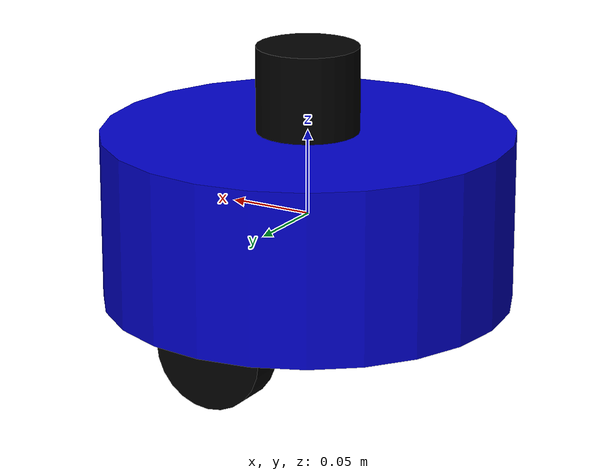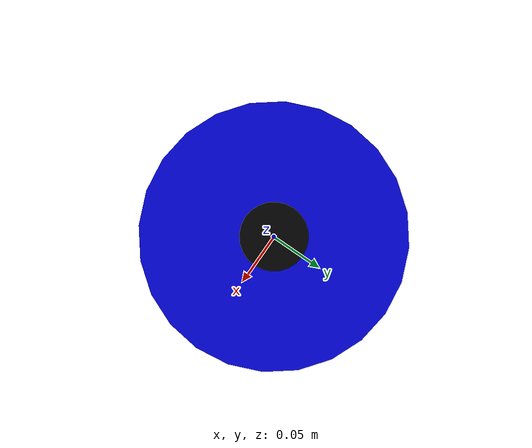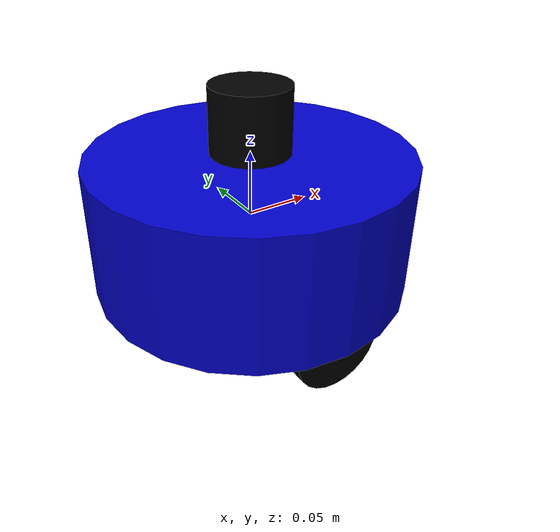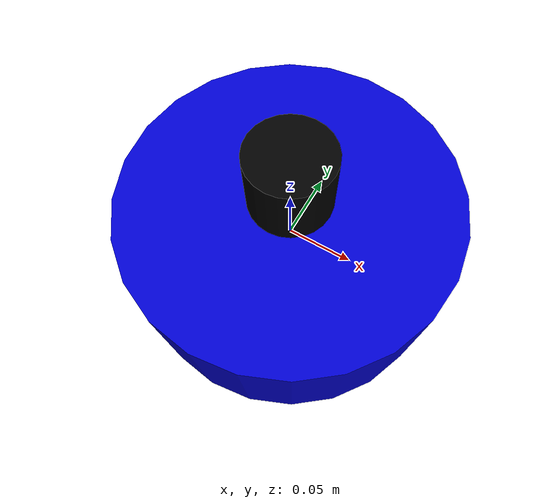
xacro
<?xml version="1.0"?>
<robot name="formicabot" xmlns:xacro="http://www.ros.org/wiki/xacro">

  <!-- Constants -->
  <xacro:property name="base_radius" value="0.12"/>
  <xacro:property name="base_height" value="0.10"/>
  <xacro:property name="wheel_radius" value="0.033"/>
  <xacro:property name="wheel_width" value="0.02"/>
  <xacro:property name="wheelbase" value="0.20"/>
  <xacro:property name="mass" value="1.5"/>

  <!-- Material Definitions -->
  <material name="blue">
    <color rgba="0 0 0.8 1"/>
  </material>
  <material name="black">
    <color rgba="0 0 0 1"/>
  </material>
  <material name="white">
    <color rgba="1 1 1 1"/>
  </material>

  <!-- Base Link -->
  <link name="base_link">
    <visual>
      <geometry>
        <cylinder radius="${base_radius}" length="${base_height}"/>
      </geometry>
      <material name="blue"/>
    </visual>
    <collision>
      <geometry>
        <cylinder radius="${base_radius}" length="${base_height}"/>
      </geometry>
    </collision>
    <inertial>
      <mass value="${mass}"/>
      <inertia ixx="0.005" ixy="0" ixz="0" iyy="0.005" iyz="0" izz="0.01"/>
    </inertial>
  </link>

  <!-- Left Wheel -->
  <link name="left_wheel">
    <visual>
      <geometry>
        <cylinder radius="${wheel_radius}" length="${wheel_width}"/>
      </geometry>
      <material name="black"/>
    </visual>
    <collision>
      <geometry>
        <cylinder radius="${wheel_radius}" length="${wheel_width}"/>
      </geometry>
    </collision>
    <inertial>
      <mass value="0.1"/>
      <inertia ixx="0.0001" ixy="0" ixz="0" iyy="0.0001" iyz="0" izz="0.0001"/>
    </inertial>
  </link>

  <joint name="left_wheel_joint" type="continuous">
    <parent link="base_link"/>
    <child link="left_wheel"/>
    <origin xyz="0 ${wheelbase/2} -${base_height/2}" rpy="-1.5708 0 0"/>
    <axis xyz="0 0 1"/>
  </joint>

  <!-- Right Wheel -->
  <link name="right_wheel">
    <visual>
      <geometry>
        <cylinder radius="${wheel_radius}" length="${wheel_width}"/>
      </geometry>
      <material name="black"/>
    </visual>
    <collision>
      <geometry>
        <cylinder radius="${wheel_radius}" length="${wheel_width}"/>
      </geometry>
    </collision>
    <inertial>
      <mass value="0.1"/>
      <inertia ixx="0.0001" ixy="0" ixz="0" iyy="0.0001" iyz="0" izz="0.0001"/>
    </inertial>
  </link>

  <joint name="right_wheel_joint" type="continuous">
    <parent link="base_link"/>
    <child link="right_wheel"/>
    <origin xyz="0 -${wheelbase/2} -${base_height/2}" rpy="-1.5708 0 0"/>
    <axis xyz="0 0 1"/>
  </joint>

  <!-- Caster Wheel -->
  <link name="caster_wheel">
    <visual>
      <geometry>
        <sphere radius="${wheel_radius}"/>
      </geometry>
      <material name="white"/>
    </visual>
    <collision>
      <geometry>
        <sphere radius="${wheel_radius}"/>
      </geometry>
    </collision>
    <inertial>
      <mass value="0.05"/>
      <inertia ixx="0.00001" ixy="0" ixz="0" iyy="0.00001" iyz="0" izz="0.00001"/>
    </inertial>
  </link>

  <joint name="caster_joint" type="fixed">
    <parent link="base_link"/>
    <child link="caster_wheel"/>
    <origin xyz="0.08 0 -${base_height/2}"/>
  </joint>

  <!-- LiDAR Sensor -->
  <link name="lidar_link">
    <visual>
      <geometry>
        <cylinder radius="0.03" length="0.05"/>
      </geometry>
      <material name="black"/>
    </visual>
  </link>

  <joint name="lidar_joint" type="fixed">
    <parent link="base_link"/>
    <child link="lidar_link"/>
    <origin xyz="0 0 ${base_height/2 + 0.025}" rpy="0 0 0"/>
  </joint>

  <!-- Gazebo Plugins -->
  <gazebo>
    <plugin name="diff_drive" filename="libgazebo_ros_diff_drive.so">
      <ros>
        <namespace>/</namespace>
      </ros>
      <left_joint>left_wheel_joint</left_joint>
      <right_joint>right_wheel_joint</right_joint>
      <wheel_separation>${wheelbase}</wheel_separation>
      <wheel_diameter>${2*wheel_radius}</wheel_diameter>
      <max_wheel_torque>20</max_wheel_torque>
      <max_wheel_acceleration>1.0</max_wheel_acceleration>
      <publish_odom>true</publish_odom>
      <publish_odom_tf>true</publish_odom_tf>
      <publish_wheel_tf>true</publish_wheel_tf>
      <odometry_frame>odom</odometry_frame>
      <robot_base_frame>base_link</robot_base_frame>
    </plugin>
  </gazebo>

  <gazebo reference="lidar_link">
    <sensor name="lidar" type="ray">
      <always_on>true</always_on>
      <visualize>true</visualize>
      <update_rate>10</update_rate>
      <ray>
        <scan>
          <horizontal>
            <samples>360</samples>
            <resolution>1.000000</resolution>
            <min_angle>0.000000</min_angle>
            <max_angle>6.280000</max_angle>
          </horizontal>
        </scan>
        <range>
          <min>0.120000</min>
          <max>3.5</max>
          <resolution>0.015000</resolution>
        </range>
        <noise>
          <type>gaussian</type>
          <mean>0.0</mean>
          <stddev>0.01</stddev>
        </noise>
      </ray>
      <plugin name="scan" filename="libgazebo_ros_ray_sensor.so">
        <ros>
          <remapping>~/out:=scan</remapping>
        </ros>
        <output_type>sensor_msgs/LaserScan</output_type>
        <frame_name>lidar_link</frame_name>
      </plugin>
    </sensor>
  </gazebo>

</robot>
